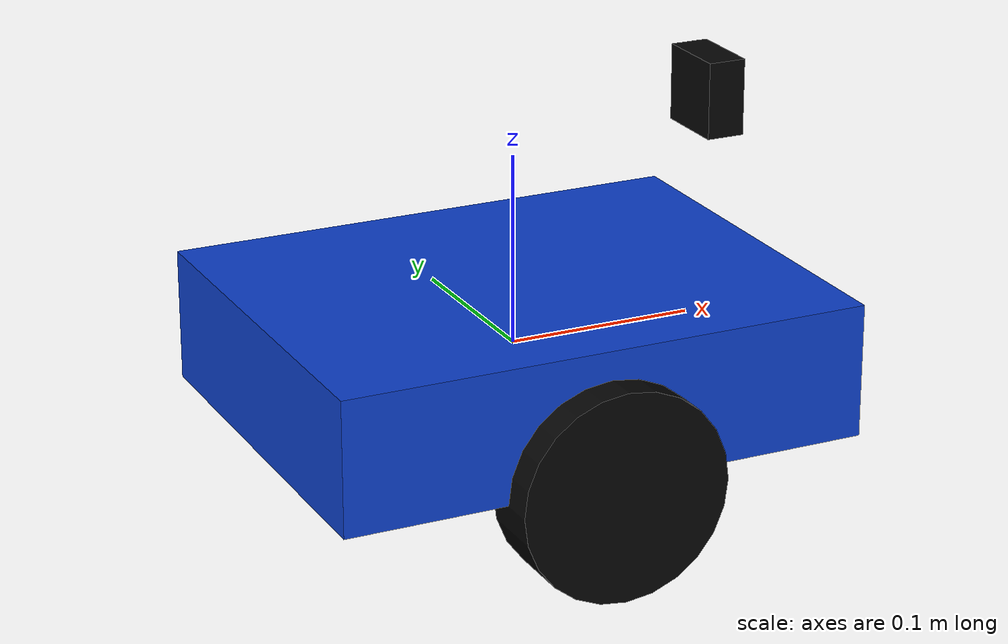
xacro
<?xml version="1.0"?>
<robot name="line_follower" xmlns:xacro="http://www.ros.org/wiki/xacro">
  <xacro:include filename="$(find line_follower_bot)/description/materials.xacro"/>
  <xacro:include filename="$(find line_follower_bot)/description/camera.xacro"/>
  <xacro:property name="wheel_radius" value="0.055"/>
  <xacro:property name="wheel_width" value="0.035"/>
  <xacro:property name="wheel_separation" value="0.22"/>

  <link name="base_link">
    <visual><geometry><box size="0.28 0.22 0.07"/></geometry><material name="blue"/></visual>
    <collision><geometry><box size="0.28 0.22 0.07"/></geometry></collision>
    <inertial><mass value="1.0"/><inertia ixx="0.006" iyy="0.008" izz="0.01"
      ixy="0" ixz="0" iyz="0"/></inertial>
  </link>
  <link name="left_wheel">
    <visual><origin rpy="1.5708 0 0"/><geometry><cylinder radius="${wheel_radius}" length="${wheel_width}"/></geometry><material name="black"/></visual>
    <collision><origin rpy="1.5708 0 0"/><geometry><cylinder radius="${wheel_radius}" length="${wheel_width}"/></geometry></collision>
    <inertial><mass value="0.15"/><inertia ixx="0.0005" iyy="0.0005" izz="0.0005"
      ixy="0" ixz="0" iyz="0"/></inertial>
  </link>
  <link name="right_wheel">
    <visual><origin rpy="1.5708 0 0"/><geometry><cylinder radius="${wheel_radius}" length="${wheel_width}"/></geometry><material name="black"/></visual>
    <collision><origin rpy="1.5708 0 0"/><geometry><cylinder radius="${wheel_radius}" length="${wheel_width}"/></geometry></collision>
    <inertial><mass value="0.15"/><inertia ixx="0.0005" iyy="0.0005" izz="0.0005"
      ixy="0" ixz="0" iyz="0"/></inertial>
  </link>
  <joint name="left_wheel_joint" type="continuous">
    <parent link="base_link"/><child link="left_wheel"/>
    <origin xyz="0 ${wheel_separation/2} -0.035" rpy="0 0 0"/><axis xyz="0 1 0"/>
  </joint>
  <joint name="right_wheel_joint" type="continuous">
    <parent link="base_link"/><child link="right_wheel"/>
    <origin xyz="0 -${wheel_separation/2} -0.035" rpy="0 0 0"/><axis xyz="0 1 0"/>
  </joint>
  <link name="front_caster">
    <visual><geometry><sphere radius="0.025"/></geometry><material name="black"/></visual>
    <collision><geometry><sphere radius="0.025"/></geometry></collision>
    <inertial><mass value="0.04"/><inertia ixx="0.00001" iyy="0.00001" izz="0.00001"
      ixy="0" ixz="0" iyz="0"/></inertial>
  </link>
  <joint name="front_caster_joint" type="fixed">
    <parent link="base_link"/><child link="front_caster"/><origin xyz="0.115 0 -0.06"/>
  </joint>
  <xacro:line_camera parent="base_link"/>

  <gazebo reference="base_link"><material>Gazebo/Blue</material></gazebo>
  <gazebo>
    <plugin filename="gz-sim-diff-drive-system" name="gz::sim::systems::DiffDrive">
      <left_joint>left_wheel_joint</left_joint><right_joint>right_wheel_joint</right_joint>
      <wheel_separation>${wheel_separation}</wheel_separation><wheel_radius>${wheel_radius}</wheel_radius>
      <topic>/cmd_vel</topic><odom_topic>/odom</odom_topic><frame_id>odom</frame_id>
      <child_frame_id>base_link</child_frame_id><odom_publish_frequency>50</odom_publish_frequency>
    </plugin>
    <plugin filename="gz-sim-joint-state-publisher-system" name="gz::sim::systems::JointStatePublisher">
      <joint_name>left_wheel_joint</joint_name><joint_name>right_wheel_joint</joint_name>
    </plugin>
  </gazebo>
</robot>

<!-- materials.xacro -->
<robot xmlns:xacro="http://www.ros.org/wiki/xacro">
  <material name="blue"><color rgba="0.05 0.25 0.8 1"/></material>
  <material name="black"><color rgba="0.02 0.02 0.02 1"/></material>
  <material name="white"><color rgba="0.9 0.9 0.9 1"/></material>
</robot>

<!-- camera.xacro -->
<robot xmlns:xacro="http://www.ros.org/wiki/xacro">
  <xacro:macro name="line_camera" params="parent">
    <link name="camera_link">
      <visual><geometry><box size="0.04 0.04 0.02"/></geometry><material name="black"/></visual>
      <collision><geometry><box size="0.04 0.04 0.02"/></geometry></collision>
      <inertial><mass value="0.02"/><inertia ixx="0.00001" iyy="0.00001" izz="0.00001"
        ixy="0" ixz="0" iyz="0"/></inertial>
    </link>
    <joint name="camera_joint" type="fixed">
      <parent link="${parent}"/><child link="camera_link"/>
      <origin xyz="0.11 0 0.12" rpy="0 1.5708 0"/>
    </joint>
    <gazebo reference="camera_link">
      <sensor name="line_camera" type="camera">
        <always_on>true</always_on><update_rate>50</update_rate><visualize>true</visualize>
        <topic>/camera/image_raw</topic>
        <camera>
          <horizontal_fov>1.047</horizontal_fov>
          <image><width>320</width><height>240</height><format>R8G8B8</format></image>
          <clip><near>0.01</near><far>10</far></clip>
        </camera>
      </sensor>
    </gazebo>
  </xacro:macro>
</robot>
